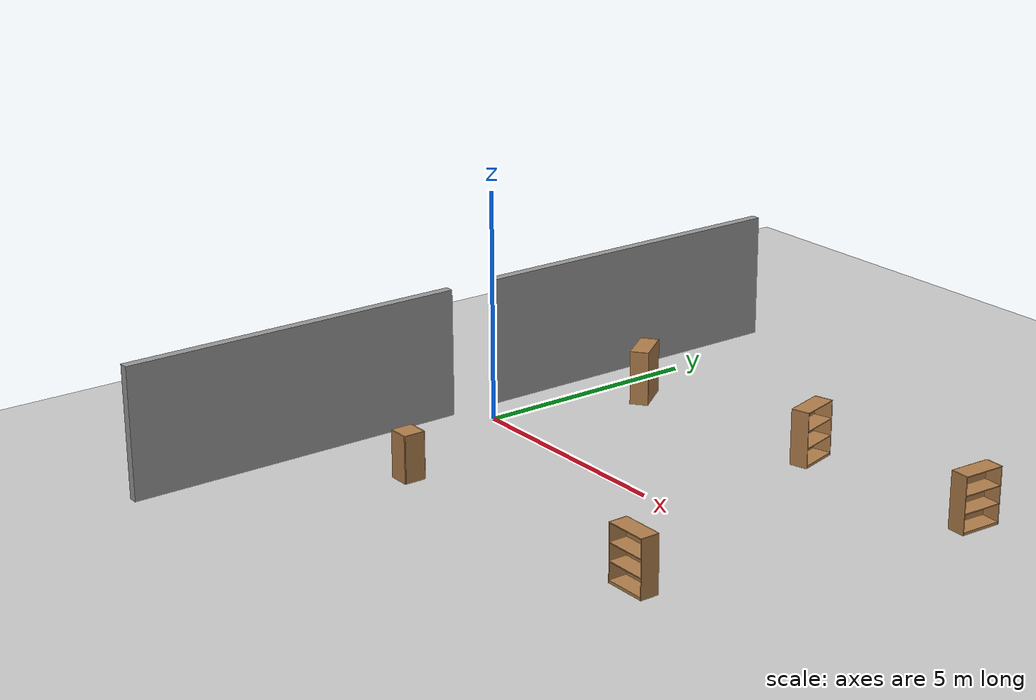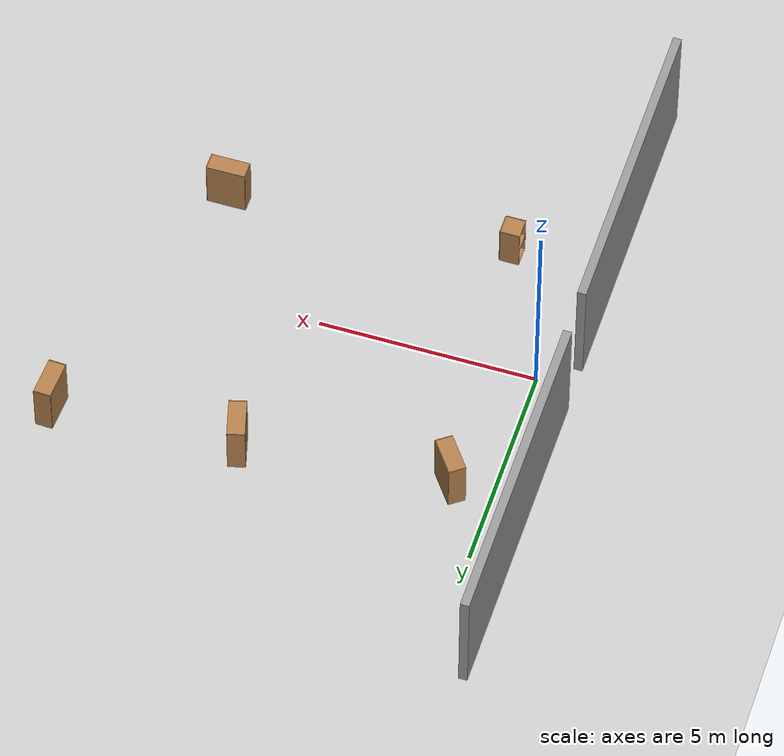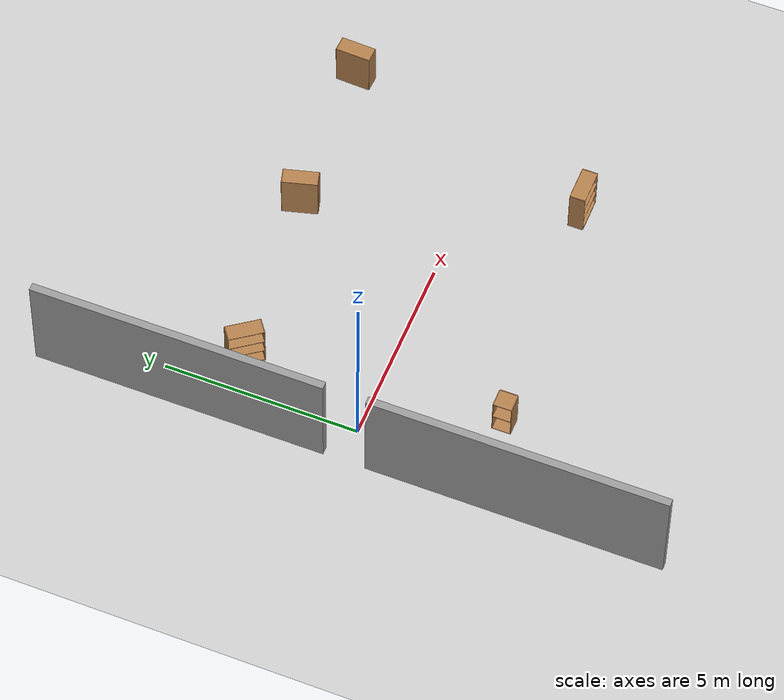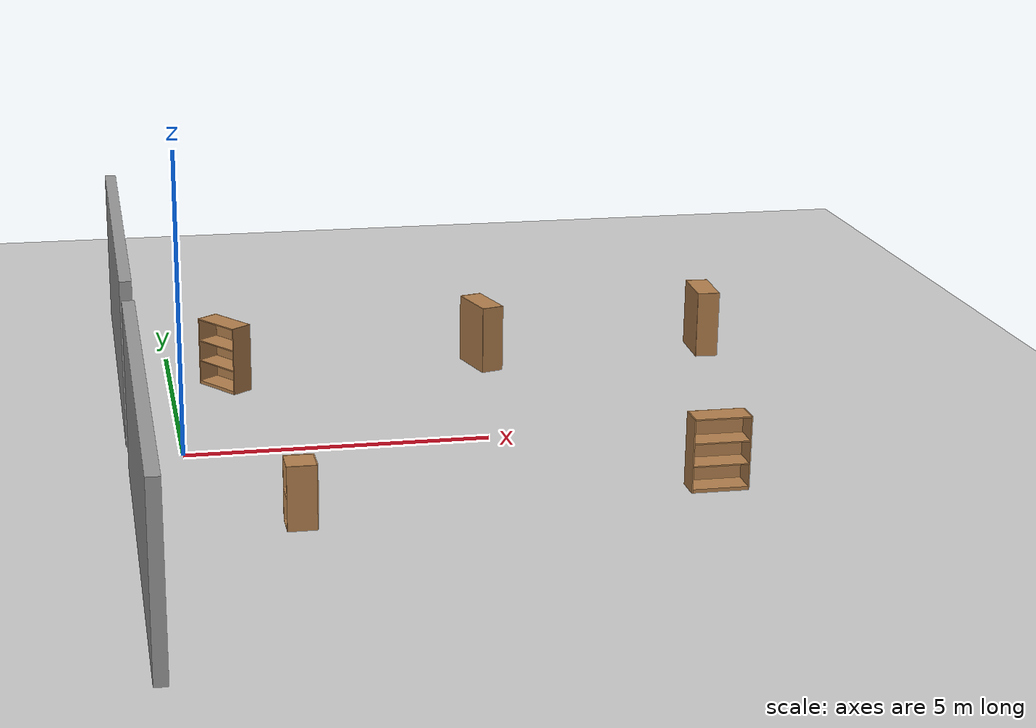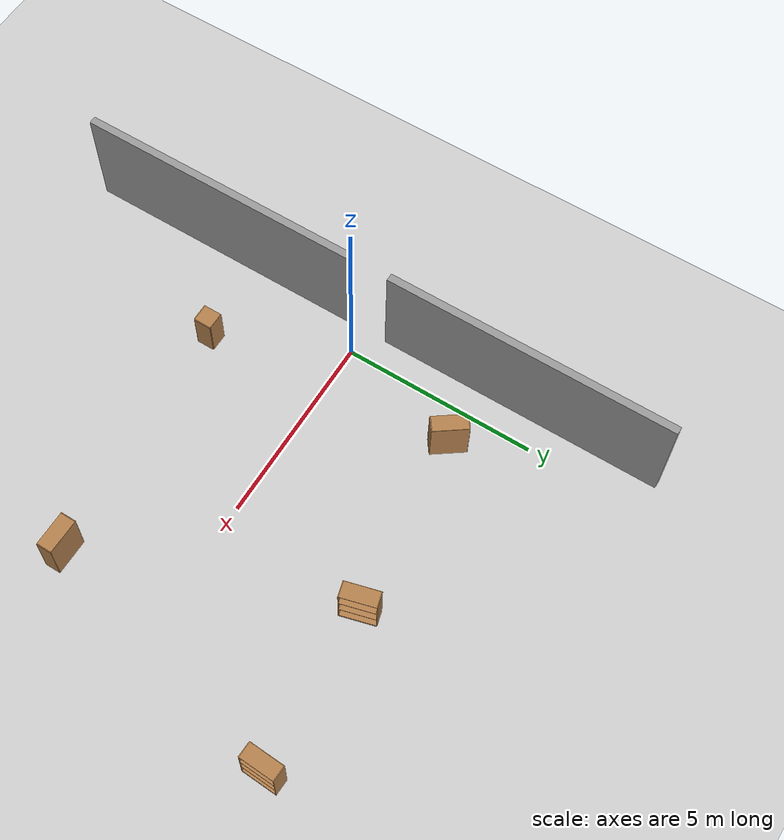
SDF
<sdf version="1.6">
 <world name="default">
  <light name="sun" type="directional">
   <pose>0 0 10 0 -0 0</pose>
   <diffuse>0.8 0.8 0.8 1</diffuse>
   <specular>0.1 0.1 0.1 1</specular>
   <attenuation>
    <range>1000</range>
    <constant>0.9</constant>
    <linear>0.01</linear>
    <quadratic>0.001</quadratic>
   </attenuation>
   <direction>-0.5 0.5 -1</direction>
  </light>
  <model name="ground_plane">
   <static>1</static>
   <link name="link">
    <collision name="collision">
     <geometry><plane><normal>0 0 1</normal><size>100 100</size></plane></geometry>
     <surface><friction><ode><mu>100</mu><mu2>50</mu2></ode></friction></surface>
    </collision>
    <visual name="visual">
     <cast_shadows>0</cast_shadows>
     <geometry><plane><normal>0 0 1</normal><size>100 100</size></plane></geometry>
     <material>
      <script><uri>file://media/materials/scripts/gazebo.material</uri><name>Gazebo/Grey</name></script>
     </material>
    </visual>
   </link>
  </model>
  <gravity>0 0 -9.8</gravity>
  <magnetic_field>6e-06 2.3e-05 -4.2e-05</magnetic_field>
  <atmosphere type="adiabatic"/>
  <physics name="default_physics" default="0" type="ode">
   <max_step_size>0.001</max_step_size>
   <real_time_factor>1</real_time_factor>
   <real_time_update_rate>1000</real_time_update_rate>
  </physics>
  <scene><ambient>0.4 0.4 0.4 1</ambient><background>0.7 0.7 0.7 1</background><shadows>1</shadows></scene>
  <spherical_coordinates>
   <surface_model>EARTH_WGS84</surface_model>
   <latitude_deg>0</latitude_deg>
   <longitude_deg>0</longitude_deg>
   <elevation>0</elevation>
   <heading_deg>0</heading_deg>
  </spherical_coordinates>
  <model name="grey_wall">
   <static>1</static>
   <link name="link">
    <pose>0 0 1.4 0 -0 0</pose>
    <collision name="collision"><geometry><box><size>7.5 0.2 2.8</size></box></geometry></collision>
    <visual name="visual">
     <cast_shadows>0</cast_shadows>
     <geometry><box><size>7.5 0.2 2.8</size></box></geometry>
     <material>
      <script>
       <uri>model://grey_wall/materials/scripts</uri>
       <uri>model://grey_wall/materials/textures</uri>
       <name>vrc/grey_wall</name>
      </script>
     </material>
    </visual>
   </link>
   <pose>-0.804168 -4.29292 0 0 -0 1.57079</pose>
  </model>
  <model name="grey_wall_clone">
   <static>1</static>
   <link name="link">
    <pose>0 0 1.4 0 -0 0</pose>
    <collision name="collision"><geometry><box><size>7.5 0.2 2.8</size></box></geometry></collision>
    <visual name="visual">
     <cast_shadows>0</cast_shadows>
     <geometry><box><size>7.5 0.2 2.8</size></box></geometry>
     <material>
      <script>
       <uri>model://grey_wall/materials/scripts</uri>
       <uri>model://grey_wall/materials/textures</uri>
       <name>vrc/grey_wall</name>
      </script>
     </material>
    </visual>
   </link>
   <pose>-0.806001 4.27388 0 0 -0 1.57079</pose>
  </model>
  <model name="cabinet">
   <static>1</static>
   <link name="cabinet_bottom_plate">
    <inertial>
     <pose>0 0 -1 0 -0 0</pose>
     <inertia><ixx>2.05</ixx><ixy>0</ixy><ixz>0</ixz><iyy>2.05</iyy><iyz>0</iyz><izz>2.05</izz></inertia>
     <mass>25</mass>
    </inertial>
    <collision name="cabinet_bottom_plate_geom">
     <pose>0 0 0.01 0 -0 0</pose>
     <geometry><box><size>0.45 0.45 0.02</size></box></geometry>
    </collision>
    <visual name="cabinet_bottom_plate_geom_visual">
     <pose>0 0 0.01 0 -0 0</pose>
     <geometry><box><size>0.45 0.45 0.02</size></box></geometry>
     <material>
      <script><uri>file://media/materials/scripts/gazebo.material</uri><name>Gazebo/Wood</name></script>
     </material>
    </visual>
    <collision name="cabinet_bottom_plate_geom_cabinet_back_plate">
     <pose>0.235 0 0.51 0 -0 0</pose>
     <geometry><box><size>0.02 0.45 1.02</size></box></geometry>
    </collision>
    <visual name="cabinet_bottom_plate_geom_cabinet_back_plate_visual">
     <pose>0.235 0 0.51 0 -0 0</pose>
     <geometry><box><size>0.02 0.45 1.02</size></box></geometry>
     <material>
      <script><uri>file://media/materials/scripts/gazebo.material</uri><name>Gazebo/Wood</name></script>
     </material>
    </visual>
    <collision name="cabinet_bottom_plate_geom_cabinet_left_plate">
     <pose>0 0.235 0.51 0 -0 0</pose>
     <geometry><box><size>0.45 0.02 1.02</size></box></geometry>
    </collision>
    <visual name="cabinet_bottom_plate_geom_cabinet_left_plate_visual">
     <pose>0 0.235 0.51 0 -0 0</pose>
     <geometry><box><size>0.45 0.02 1.02</size></box></geometry>
     <material>
      <script><uri>file://media/materials/scripts/gazebo.material</uri><name>Gazebo/Wood</name></script>
     </material>
    </visual>
    <collision name="cabinet_bottom_plate_geom_cabinet_middle_plate">
     <pose>0 0 0.51 0 -0 0</pose>
     <geometry><box><size>0.45 0.45 0.02</size></box></geometry>
    </collision>
    <visual name="cabinet_bottom_plate_geom_cabinet_middle_plate_visual">
     <pose>0 0 0.51 0 -0 0</pose>
     <geometry><box><size>0.45 0.45 0.02</size></box></geometry>
     <material>
      <script><uri>file://media/materials/scripts/gazebo.material</uri><name>Gazebo/Wood</name></script>
     </material>
    </visual>
    <collision name="cabinet_bottom_plate_geom_cabinet_right_plate">
     <pose>0 -0.235 0.51 0 -0 0</pose>
     <geometry><box><size>0.45 0.02 1.02</size></box></geometry>
    </collision>
    <visual name="cabinet_bottom_plate_geom_cabinet_right_plate_visual">
     <pose>0 -0.235 0.51 0 -0 0</pose>
     <geometry><box><size>0.45 0.02 1.02</size></box></geometry>
     <material>
      <script><uri>file://media/materials/scripts/gazebo.material</uri><name>Gazebo/Wood</name></script>
     </material>
    </visual>
    <collision name="cabinet_bottom_plate_geom_cabinet_top_plate">
     <pose>0 0 1.01 0 -0 0</pose>
     <geometry><box><size>0.45 0.45 0.02</size></box></geometry>
    </collision>
    <visual name="cabinet_bottom_plate_geom_cabinet_top_plate_visual">
     <pose>0 0 1.01 0 -0 0</pose>
     <geometry><box><size>0.45 0.45 0.02</size></box></geometry>
     <material>
      <script><uri>file://media/materials/scripts/gazebo.material</uri><name>Gazebo/Wood</name></script>
     </material>
    </visual>
   </link>
   <pose>1.51567 -3.16801 0 0 -0 0</pose>
  </model>
  <model name="bookshelf">
   <static>1</static>
   <link name="link">
    <inertial><mass>1</mass></inertial>
    <collision name="back">
     <pose>0 0.005 0.6 0 -0 0</pose>
     <geometry><box><size>0.9 0.01 1.2</size></box></geometry>
    </collision>
    <visual name="visual1">
     <pose>0 0.005 0.6 0 -0 0</pose>
     <geometry><box><size>0.9 0.01 1.2</size></box></geometry>
     <material>
      <script><uri>file://media/materials/scripts/gazebo.material</uri><name>Gazebo/Wood</name></script>
     </material>
    </visual>
    <collision name="left_side">
     <pose>0.45 -0.195 0.6 0 -0 0</pose>
     <geometry><box><size>0.02 0.4 1.2</size></box></geometry>
    </collision>
    <visual name="visual2">
     <pose>0.45 -0.195 0.6 0 -0 0</pose>
     <geometry><box><size>0.02 0.4 1.2</size></box></geometry>
     <material>
      <script><uri>file://media/materials/scripts/gazebo.material</uri><name>Gazebo/Wood</name></script>
     </material>
    </visual>
    <collision name="right_side">
     <pose>-0.45 -0.195 0.6 0 -0 0</pose>
     <geometry><box><size>0.02 0.4 1.2</size></box></geometry>
    </collision>
    <visual name="visual3">
     <pose>-0.45 -0.195 0.6 0 -0 0</pose>
     <geometry><box><size>0.02 0.4 1.2</size></box></geometry>
     <material>
      <script><uri>file://media/materials/scripts/gazebo.material</uri><name>Gazebo/Wood</name></script>
     </material>
    </visual>
    <collision name="bottom">
     <pose>0 -0.195 0.03 0 -0 0</pose>
     <geometry><box><size>0.88 0.4 0.06</size></box></geometry>
    </collision>
    <visual name="visual4">
     <pose>0 -0.195 0.03 0 -0 0</pose>
     <geometry><box><size>0.88 0.4 0.06</size></box></geometry>
     <material>
      <script><uri>file://media/materials/scripts/gazebo.material</uri><name>Gazebo/Wood</name></script>
     </material>
    </visual>
    <collision name="top">
     <pose>0 -0.195 1.19 0 -0 0</pose>
     <geometry><box><size>0.88 0.4 0.02</size></box></geometry>
    </collision>
    <visual name="visual5">
     <pose>0 -0.195 1.19 0 -0 0</pose>
     <geometry><box><size>0.88 0.4 0.02</size></box></geometry>
     <material>
      <script><uri>file://media/materials/scripts/gazebo.material</uri><name>Gazebo/Wood</name></script>
     </material>
    </visual>
    <collision name="low_shelf">
     <pose>0 -0.195 0.43 0 -0 0</pose>
     <geometry><box><size>0.88 0.4 0.02</size></box></geometry>
    </collision>
    <visual name="visual6">
     <pose>0 -0.195 0.43 0 -0 0</pose>
     <geometry><box><size>0.88 0.4 0.02</size></box></geometry>
     <material>
      <script><uri>file://media/materials/scripts/gazebo.material</uri><name>Gazebo/Wood</name></script>
     </material>
    </visual>
    <collision name="high_shelf">
     <pose>0 -0.195 0.8 0 -0 0</pose>
     <geometry><box><size>0.88 0.4 0.02</size></box></geometry>
    </collision>
    <visual name="visual7">
     <pose>0 -0.195 0.8 0 -0 0</pose>
     <geometry><box><size>0.88 0.4 0.02</size></box></geometry>
     <material>
      <script><uri>file://media/materials/scripts/gazebo.material</uri><name>Gazebo/Wood</name></script>
     </material>
    </visual>
   </link>
   <pose>1.10765 3.42622 0 0 0 -0.93681</pose>
  </model>
  <model name="bookshelf_0">
   <static>1</static>
   <link name="link">
    <inertial><mass>1</mass></inertial>
    <collision name="back">
     <pose>0 0.005 0.6 0 -0 0</pose>
     <geometry><box><size>0.9 0.01 1.2</size></box></geometry>
    </collision>
    <visual name="visual1">
     <pose>0 0.005 0.6 0 -0 0</pose>
     <geometry><box><size>0.9 0.01 1.2</size></box></geometry>
     <material>
      <script><uri>file://media/materials/scripts/gazebo.material</uri><name>Gazebo/Wood</name></script>
     </material>
    </visual>
    <collision name="left_side">
     <pose>0.45 -0.195 0.6 0 -0 0</pose>
     <geometry><box><size>0.02 0.4 1.2</size></box></geometry>
    </collision>
    <visual name="visual2">
     <pose>0.45 -0.195 0.6 0 -0 0</pose>
     <geometry><box><size>0.02 0.4 1.2</size></box></geometry>
     <material>
      <script><uri>file://media/materials/scripts/gazebo.material</uri><name>Gazebo/Wood</name></script>
     </material>
    </visual>
    <collision name="right_side">
     <pose>-0.45 -0.195 0.6 0 -0 0</pose>
     <geometry><box><size>0.02 0.4 1.2</size></box></geometry>
    </collision>
    <visual name="visual3">
     <pose>-0.45 -0.195 0.6 0 -0 0</pose>
     <geometry><box><size>0.02 0.4 1.2</size></box></geometry>
     <material>
      <script><uri>file://media/materials/scripts/gazebo.material</uri><name>Gazebo/Wood</name></script>
     </material>
    </visual>
    <collision name="bottom">
     <pose>0 -0.195 0.03 0 -0 0</pose>
     <geometry><box><size>0.88 0.4 0.06</size></box></geometry>
    </collision>
    <visual name="visual4">
     <pose>0 -0.195 0.03 0 -0 0</pose>
     <geometry><box><size>0.88 0.4 0.06</size></box></geometry>
     <material>
      <script><uri>file://media/materials/scripts/gazebo.material</uri><name>Gazebo/Wood</name></script>
     </material>
    </visual>
    <collision name="top">
     <pose>0 -0.195 1.19 0 -0 0</pose>
     <geometry><box><size>0.88 0.4 0.02</size></box></geometry>
    </collision>
    <visual name="visual5">
     <pose>0 -0.195 1.19 0 -0 0</pose>
     <geometry><box><size>0.88 0.4 0.02</size></box></geometry>
     <material>
      <script><uri>file://media/materials/scripts/gazebo.material</uri><name>Gazebo/Wood</name></script>
     </material>
    </visual>
    <collision name="low_shelf">
     <pose>0 -0.195 0.43 0 -0 0</pose>
     <geometry><box><size>0.88 0.4 0.02</size></box></geometry>
    </collision>
    <visual name="visual6">
     <pose>0 -0.195 0.43 0 -0 0</pose>
     <geometry><box><size>0.88 0.4 0.02</size></box></geometry>
     <material>
      <script><uri>file://media/materials/scripts/gazebo.material</uri><name>Gazebo/Wood</name></script>
     </material>
    </visual>
    <collision name="high_shelf">
     <pose>0 -0.195 0.8 0 -0 0</pose>
     <geometry><box><size>0.88 0.4 0.02</size></box></geometry>
    </collision>
    <visual name="visual7">
     <pose>0 -0.195 0.8 0 -0 0</pose>
     <geometry><box><size>0.88 0.4 0.02</size></box></geometry>
     <material>
      <script><uri>file://media/materials/scripts/gazebo.material</uri><name>Gazebo/Wood</name></script>
     </material>
    </visual>
   </link>
   <pose>5.46343 3.75427 0 0 -0 1.84088</pose>
  </model>
  <model name="bookshelf_1">
   <static>1</static>
   <link name="link">
    <inertial><mass>1</mass></inertial>
    <collision name="back">
     <pose>0 0.005 0.6 0 -0 0</pose>
     <geometry><box><size>0.9 0.01 1.2</size></box></geometry>
    </collision>
    <visual name="visual1">
     <pose>0 0.005 0.6 0 -0 0</pose>
     <geometry><box><size>0.9 0.01 1.2</size></box></geometry>
     <material>
      <script><uri>file://media/materials/scripts/gazebo.material</uri><name>Gazebo/Wood</name></script>
     </material>
    </visual>
    <collision name="left_side">
     <pose>0.45 -0.195 0.6 0 -0 0</pose>
     <geometry><box><size>0.02 0.4 1.2</size></box></geometry>
    </collision>
    <visual name="visual2">
     <pose>0.45 -0.195 0.6 0 -0 0</pose>
     <geometry><box><size>0.02 0.4 1.2</size></box></geometry>
     <material>
      <script><uri>file://media/materials/scripts/gazebo.material</uri><name>Gazebo/Wood</name></script>
     </material>
    </visual>
    <collision name="right_side">
     <pose>-0.45 -0.195 0.6 0 -0 0</pose>
     <geometry><box><size>0.02 0.4 1.2</size></box></geometry>
    </collision>
    <visual name="visual3">
     <pose>-0.45 -0.195 0.6 0 -0 0</pose>
     <geometry><box><size>0.02 0.4 1.2</size></box></geometry>
     <material>
      <script><uri>file://media/materials/scripts/gazebo.material</uri><name>Gazebo/Wood</name></script>
     </material>
    </visual>
    <collision name="bottom">
     <pose>0 -0.195 0.03 0 -0 0</pose>
     <geometry><box><size>0.88 0.4 0.06</size></box></geometry>
    </collision>
    <visual name="visual4">
     <pose>0 -0.195 0.03 0 -0 0</pose>
     <geometry><box><size>0.88 0.4 0.06</size></box></geometry>
     <material>
      <script><uri>file://media/materials/scripts/gazebo.material</uri><name>Gazebo/Wood</name></script>
     </material>
    </visual>
    <collision name="top">
     <pose>0 -0.195 1.19 0 -0 0</pose>
     <geometry><box><size>0.88 0.4 0.02</size></box></geometry>
    </collision>
    <visual name="visual5">
     <pose>0 -0.195 1.19 0 -0 0</pose>
     <geometry><box><size>0.88 0.4 0.02</size></box></geometry>
     <material>
      <script><uri>file://media/materials/scripts/gazebo.material</uri><name>Gazebo/Wood</name></script>
     </material>
    </visual>
    <collision name="low_shelf">
     <pose>0 -0.195 0.43 0 -0 0</pose>
     <geometry><box><size>0.88 0.4 0.02</size></box></geometry>
    </collision>
    <visual name="visual6">
     <pose>0 -0.195 0.43 0 -0 0</pose>
     <geometry><box><size>0.88 0.4 0.02</size></box></geometry>
     <material>
      <script><uri>file://media/materials/scripts/gazebo.material</uri><name>Gazebo/Wood</name></script>
     </material>
    </visual>
    <collision name="high_shelf">
     <pose>0 -0.195 0.8 0 -0 0</pose>
     <geometry><box><size>0.88 0.4 0.02</size></box></geometry>
    </collision>
    <visual name="visual7">
     <pose>0 -0.195 0.8 0 -0 0</pose>
     <geometry><box><size>0.88 0.4 0.02</size></box></geometry>
     <material>
      <script><uri>file://media/materials/scripts/gazebo.material</uri><name>Gazebo/Wood</name></script>
     </material>
    </visual>
   </link>
   <pose>8.04125 -2.53379 0 0 -0 0</pose>
  </model>
  <model name="bookshelf_2">
   <static>1</static>
   <link name="link">
    <inertial><mass>1</mass></inertial>
    <collision name="back">
     <pose>0 0.005 0.6 0 -0 0</pose>
     <geometry><box><size>0.9 0.01 1.2</size></box></geometry>
    </collision>
    <visual name="visual1">
     <pose>0 0.005 0.6 0 -0 0</pose>
     <geometry><box><size>0.9 0.01 1.2</size></box></geometry>
     <material>
      <script><uri>file://media/materials/scripts/gazebo.material</uri><name>Gazebo/Wood</name></script>
     </material>
    </visual>
    <collision name="left_side">
     <pose>0.45 -0.195 0.6 0 -0 0</pose>
     <geometry><box><size>0.02 0.4 1.2</size></box></geometry>
    </collision>
    <visual name="visual2">
     <pose>0.45 -0.195 0.6 0 -0 0</pose>
     <geometry><box><size>0.02 0.4 1.2</size></box></geometry>
     <material>
      <script><uri>file://media/materials/scripts/gazebo.material</uri><name>Gazebo/Wood</name></script>
     </material>
    </visual>
    <collision name="right_side">
     <pose>-0.45 -0.195 0.6 0 -0 0</pose>
     <geometry><box><size>0.02 0.4 1.2</size></box></geometry>
    </collision>
    <visual name="visual3">
     <pose>-0.45 -0.195 0.6 0 -0 0</pose>
     <geometry><box><size>0.02 0.4 1.2</size></box></geometry>
     <material>
      <script><uri>file://media/materials/scripts/gazebo.material</uri><name>Gazebo/Wood</name></script>
     </material>
    </visual>
    <collision name="bottom">
     <pose>0 -0.195 0.03 0 -0 0</pose>
     <geometry><box><size>0.88 0.4 0.06</size></box></geometry>
    </collision>
    <visual name="visual4">
     <pose>0 -0.195 0.03 0 -0 0</pose>
     <geometry><box><size>0.88 0.4 0.06</size></box></geometry>
     <material>
      <script><uri>file://media/materials/scripts/gazebo.material</uri><name>Gazebo/Wood</name></script>
     </material>
    </visual>
    <collision name="top">
     <pose>0 -0.195 1.19 0 -0 0</pose>
     <geometry><box><size>0.88 0.4 0.02</size></box></geometry>
    </collision>
    <visual name="visual5">
     <pose>0 -0.195 1.19 0 -0 0</pose>
     <geometry><box><size>0.88 0.4 0.02</size></box></geometry>
     <material>
      <script><uri>file://media/materials/scripts/gazebo.material</uri><name>Gazebo/Wood</name></script>
     </material>
    </visual>
    <collision name="low_shelf">
     <pose>0 -0.195 0.43 0 -0 0</pose>
     <geometry><box><size>0.88 0.4 0.02</size></box></geometry>
    </collision>
    <visual name="visual6">
     <pose>0 -0.195 0.43 0 -0 0</pose>
     <geometry><box><size>0.88 0.4 0.02</size></box></geometry>
     <material>
      <script><uri>file://media/materials/scripts/gazebo.material</uri><name>Gazebo/Wood</name></script>
     </material>
    </visual>
    <collision name="high_shelf">
     <pose>0 -0.195 0.8 0 -0 0</pose>
     <geometry><box><size>0.88 0.4 0.02</size></box></geometry>
    </collision>
    <visual name="visual7">
     <pose>0 -0.195 0.8 0 -0 0</pose>
     <geometry><box><size>0.88 0.4 0.02</size></box></geometry>
     <material>
      <script><uri>file://media/materials/scripts/gazebo.material</uri><name>Gazebo/Wood</name></script>
     </material>
    </visual>
   </link>
   <pose>9.67631 4.04873 0 0 -0 1.52729</pose>
  </model>
 </world>
</sdf>
